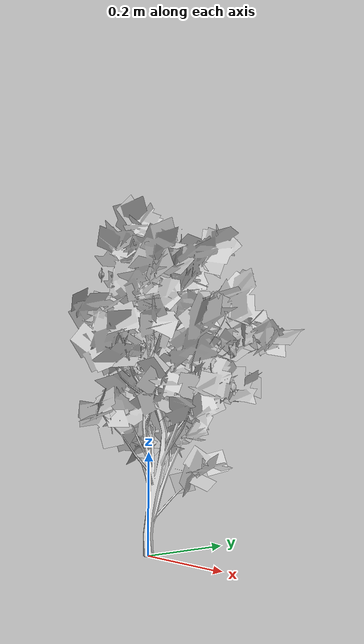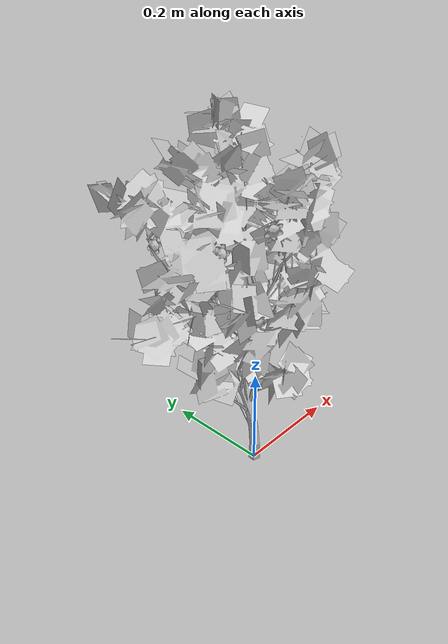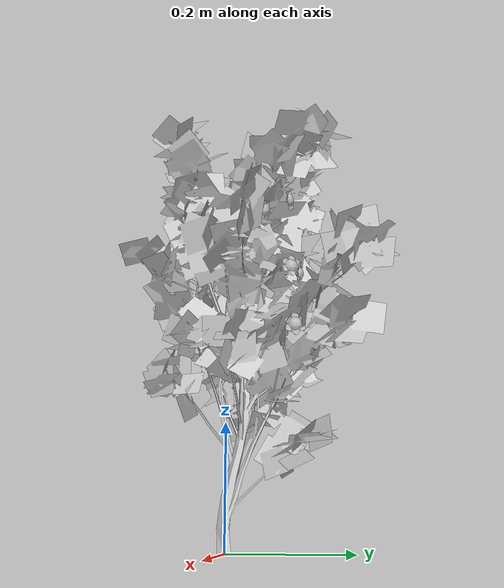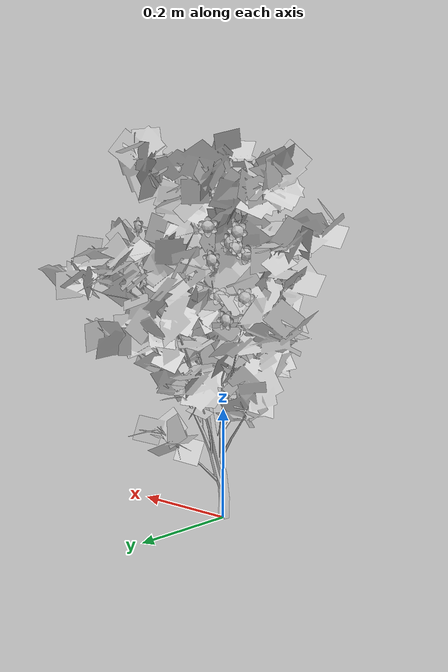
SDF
<?xml version="1.0" ?>
<sdf version="1.6">
  <model name="tree-flowers">
    <!--Skew-Seed:1404525270-->
    <static>true</static>
    <link name="link"/>
    <include>
      <uri>model://tree-mesh</uri>
      <pose>0 0 0 0 0 0</pose>
    </include>
    <joint name="tree_joint" type="fixed">
      <child>tree-mesh::link</child>
      <parent>link</parent>
    </joint>
    <include>
      <name>bramble_0</name>
      <uri>model://bramble</uri>
      <pose> 0.11719970509420619 0.11705722609656331 0.3282779134078627 -0.3127924806537411 1.502585769673249 0.0</pose>
    </include>
    <joint name="flower_joint_0" type="fixed">
      <child>bramble_0::flower_link</child>
      <parent>link</parent>
    </joint>
    <include>
      <name>bramble_1</name>
      <uri>model://bramble</uri>
      <pose> -0.11509369912212264 0.11845921683187326 0.3751604650681659 -1.7186514074574433 2.0394451140365972 0.0</pose>
    </include>
    <joint name="flower_joint_1" type="fixed">
      <child>bramble_1::flower_link</child>
      <parent>link</parent>
    </joint>
    <include>
      <name>bramble_2</name>
      <uri>model://bramble</uri>
      <pose> 0.10025719945216627 0.10650573232290995 0.5256050412071159 -1.351674257725718 1.4717517036001095 0.0</pose>
    </include>
    <joint name="flower_joint_2" type="fixed">
      <child>bramble_2::flower_link</child>
      <parent>link</parent>
    </joint>
    <include>
      <name>bramble_3</name>
      <uri>model://bramble</uri>
      <pose> 0.06324439144089294 0.11111509379577195 0.33967854050692703 -0.7989077269257534 1.2864730671159765 0.0</pose>
    </include>
    <joint name="flower_joint_3" type="fixed">
      <child>bramble_3::flower_link</child>
      <parent>link</parent>
    </joint>
    <include>
      <name>bramble_4</name>
      <uri>model://bramble</uri>
      <pose> -0.10079623038461827 0.09383706267024085 0.49872184346013937 -1.7799450892993502 2.001272921178076 0.0</pose>
    </include>
    <joint name="flower_joint_4" type="fixed">
      <child>bramble_4::flower_link</child>
      <parent>link</parent>
    </joint>
    <include>
      <name>bramble_5</name>
      <uri>model://bramble</uri>
      <pose> -0.08299271657283623 0.10077761458365286 0.4099987714767315 -2.4393280353185998 2.2940464329469146 0.0</pose>
    </include>
    <joint name="flower_joint_5" type="fixed">
      <child>bramble_5::flower_link</child>
      <parent>link</parent>
    </joint>
    <include>
      <name>bramble_6</name>
      <uri>model://bramble</uri>
      <pose> -0.08489456445576792 -0.07574209405866277 0.4050485562919987 -4.202296819377747 0.8205435138828725 0.0</pose>
    </include>
    <joint name="flower_joint_6" type="fixed">
      <child>bramble_6::flower_link</child>
      <parent>link</parent>
    </joint>
    <include>
      <name>bramble_7</name>
      <uri>model://bramble</uri>
      <pose> 0.10995325782230547 0.0701182796661746 0.5077264038332543 -1.2539236178191628 2.291484180489028 0.0</pose>
    </include>
    <joint name="flower_joint_7" type="fixed">
      <child>bramble_7::flower_link</child>
      <parent>link</parent>
    </joint>
    <include>
      <name>bramble_8</name>
      <uri>model://bramble</uri>
      <pose> -0.11952013872888244 -0.032646719422988864 0.5289597045982264 -3.091104327523064 2.107535863218936 0.0</pose>
    </include>
    <joint name="flower_joint_8" type="fixed">
      <child>bramble_8::flower_link</child>
      <parent>link</parent>
    </joint>
    <include>
      <name>bramble_9</name>
      <uri>model://bramble</uri>
      <pose> -0.07416462642271139 0.12063929544080282 0.525155861827647 -2.492627359926134 1.512128996679896 0.0</pose>
    </include>
    <joint name="flower_joint_9" type="fixed">
      <child>bramble_9::flower_link</child>
      <parent>link</parent>
    </joint>
    <include>
      <name>bramble_10</name>
      <uri>model://bramble</uri>
      <pose> -0.12758948324986802 0.11362990282485125 0.4896459876817816 -3.1265566086452803 1.9713590977160207 0.0</pose>
    </include>
    <joint name="flower_joint_10" type="fixed">
      <child>bramble_10::flower_link</child>
      <parent>link</parent>
    </joint>
    <include>
      <name>bramble_11</name>
      <uri>model://bramble</uri>
      <pose> -0.05799868899493982 0.09127640306691748 0.47001563501619653 -1.8500614937668243 1.6062083230080488 0.0</pose>
    </include>
    <joint name="flower_joint_11" type="fixed">
      <child>bramble_11::flower_link</child>
      <parent>link</parent>
    </joint>
    <include>
      <name>bramble_12</name>
      <uri>model://bramble</uri>
      <pose> -0.055885742366409585 -0.07868039911853905 0.5662188963303876 -4.16587214239561 1.555418654456178 0.0</pose>
    </include>
    <joint name="flower_joint_12" type="fixed">
      <child>bramble_12::flower_link</child>
      <parent>link</parent>
    </joint>
    <include>
      <name>bramble_13</name>
      <uri>model://bramble</uri>
      <pose> 0.08475818113530048 0.10952228462247038 0.4256372177942507 -0.4866479665134209 1.399434241147829 0.0</pose>
    </include>
    <joint name="flower_joint_13" type="fixed">
      <child>bramble_13::flower_link</child>
      <parent>link</parent>
    </joint>
    <include>
      <name>bramble_14</name>
      <uri>model://bramble</uri>
      <pose> -0.13348469541157895 0.11320460078865723 0.5165666951881566 -2.1079704216497275 1.848037948245878 0.0</pose>
    </include>
    <joint name="flower_joint_14" type="fixed">
      <child>bramble_14::flower_link</child>
      <parent>link</parent>
    </joint>
    <include>
      <name>bramble_15</name>
      <uri>model://bramble</uri>
      <pose> 0.11495330708896115 0.12069925977651687 0.40509279998049164 -1.4643186045367504 1.8700693373586124 0.0</pose>
    </include>
    <joint name="flower_joint_15" type="fixed">
      <child>bramble_15::flower_link</child>
      <parent>link</parent>
    </joint>
    <include>
      <name>bramble_16</name>
      <uri>model://bramble</uri>
      <pose> -0.11041788773566633 0.06567523567146133 0.480356964567131 -2.15454487036472 1.2212890525202393 0.0</pose>
    </include>
    <joint name="flower_joint_16" type="fixed">
      <child>bramble_16::flower_link</child>
      <parent>link</parent>
    </joint>
    <include>
      <name>bramble_17</name>
      <uri>model://bramble</uri>
      <pose> -0.136036325629451 0.09876767362255875 0.4105380120365474 -2.2177793039428257 2.220421021765324 0.0</pose>
    </include>
    <joint name="flower_joint_17" type="fixed">
      <child>bramble_17::flower_link</child>
      <parent>link</parent>
    </joint>
  </model>
</sdf>

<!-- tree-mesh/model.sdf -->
<sdf version="1.6">
  <model name="tree-mesh">
    <static>true</static>
    <link name="link">

      <collision name="collision">
        <geometry>
          <mesh>
            <uri>model://tree-mesh/meshes/new_tree.dae</uri>
            <scale>0.0625 0.0625 0.0625</scale>
          </mesh>
        </geometry>
      </collision>

      <!-- simplified collision for sake of speed since leaves shouldn't be blocking anyway -->

      <visual name="leaves">
        <geometry>
          <mesh>
            <uri>model://tree-mesh/meshes/leaves.dae</uri>
            <scale>0.0325 0.0325 0.0325</scale>
          </mesh>
        </geometry>
        <material>
          <script>
            <uri>model://tree-mesh/materials/scripts/</uri>
            <uri>model://tree-mesh/materials/textures/</uri>
            <name>NewTree/Branch</name>
          </script>
        </material>
      </visual>
      <visual name="bark">
        <geometry>
          <mesh>
            <uri>model://tree-mesh/meshes/bark.dae</uri>
            <scale>0.0325 0.0325 0.0325</scale>
          </mesh>
        </geometry>
        <material>
          <script>
            <uri>model://tree-mesh/materials/scripts/</uri>
            <uri>model://tree-mesh/materials/textures/</uri>
            <name>NewTree/Bark</name>
          </script>
        </material>
      </visual>
    </link>
  </model>
</sdf>

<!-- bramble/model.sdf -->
<sdf version="1.6">
  <model name="bramble">
    <static>true</static>
    <link name="flower_link">
      <collision name="body_collision">
        <geometry>
          <mesh>
            <uri>model://bramble/meshes/bramble.dae</uri>
            <scale>0.2 0.2 0.2</scale>
          </mesh>
        </geometry>
      </collision>
      <visual name="petals">
        <geometry>
          <mesh>
            <uri>model://bramble/meshes/bramble.dae</uri>
            <scale>0.2 0.2 0.2</scale>
            <submesh>
              <name>petal</name>
            </submesh>
          </mesh>
        </geometry>
        <material>
          <script>
            <uri>model://bramble/materials/scripts/</uri>
            <uri>model://bramble/materials/textures/</uri>
            <name>Bramble/Petal</name>
          </script>
        </material>
      </visual>
      <visual name="carpel">
        <geometry>
          <mesh>
            <uri>model://bramble/meshes/bramble.dae</uri>
            <scale>0.2 0.2 0.2</scale>
            <submesh>
              <name>carpel</name>
            </submesh>
          </mesh>
        </geometry>
        <material>
          <script>
            <uri>model://bramble/materials/scripts/</uri>
            <uri>model://bramble/materials/textures/</uri>
            <name>Bramble/Carpel</name>
          </script>
        </material>
      </visual>
      <visual name="stamen">
        <geometry>
          <mesh>
            <uri>model://bramble/meshes/bramble.dae</uri>
            <scale>0.2 0.2 0.2</scale>
            <submesh>
              <name>stamen</name>
            </submesh>
          </mesh>
        </geometry>
        <material>
          <script>
            <uri>model://bramble/materials/scripts/</uri>
            <uri>model://bramble/materials/textures/</uri>
            <name>Bramble/Stamen</name>
          </script>
        </material>
      </visual>
    </link>
  </model>
</sdf>
